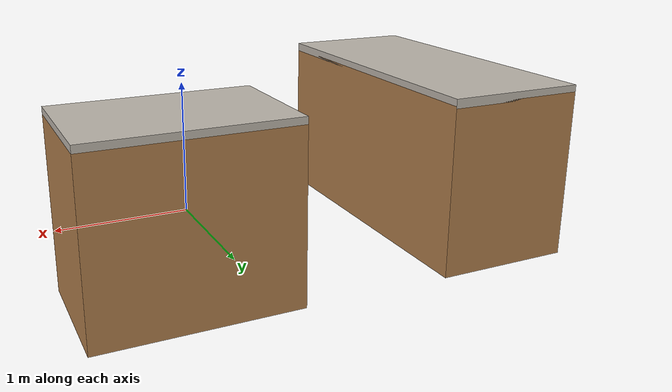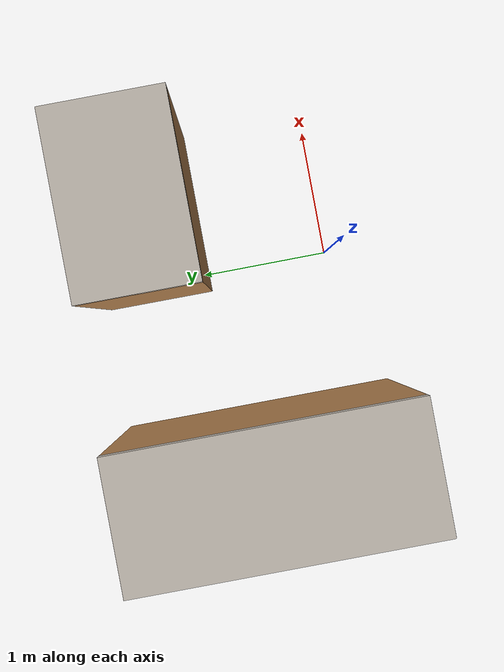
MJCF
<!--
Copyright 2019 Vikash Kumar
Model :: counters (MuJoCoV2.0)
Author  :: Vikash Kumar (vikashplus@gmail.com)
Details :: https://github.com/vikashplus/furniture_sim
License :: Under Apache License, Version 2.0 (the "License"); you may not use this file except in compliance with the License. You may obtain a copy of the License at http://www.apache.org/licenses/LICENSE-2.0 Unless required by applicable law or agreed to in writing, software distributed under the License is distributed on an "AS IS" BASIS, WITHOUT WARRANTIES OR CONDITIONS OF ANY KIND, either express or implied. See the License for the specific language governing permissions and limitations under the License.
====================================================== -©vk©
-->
<mujoco model="counters">
    <compiler angle="radian"/>
    <asset>
        <texture name="T_counter_metal" type="cube" height="1" width="1" file="kitchen_textures/metal0.png" />
        <texture name="T_counter_marble" type="cube" height="1" width="1" file="kitchen_textures/stone2.png" />
        <texture name="T_counter_wood" type="cube" height="2" width="2" file="kitchen_textures/wood1.png"/>

        <material name="counter_metal" rgba="1 1 1 1" texture="T_counter_metal" texrepeat="3 3" reflectance="0" shininess="0" texuniform="false" />
        <material name="counter_marble"  texture="T_counter_marble" texrepeat="1 1" reflectance="0" shininess="0" texuniform="false" />
        <material name="counter_black" rgba=".2 .2 .2 1" reflectance="0" shininess="0"  />
        <material name="counter_blue" texture="T_counter_wood" rgba="1 1 1 1" reflectance="0" shininess="0" texuniform="false"/>
        <material name="counter_collision_blue" rgba="0.3 0.3 1.0 0.5" shininess="0" specular="0" />

    </asset>

    <default>
        <default class="counters">
            <joint damping="2" frictionloss="2" armature=".01" limited="true"/>
            <geom conaffinity="0" contype="0" group="1" material="counter_metal" type="mesh"/>
            <default class="counter_collision">
                <geom conaffinity="1" condim="3" contype="0" group="4" margin="0.001" material="counter_collision_blue"/>
            </default>
        </default>
    </default>

    <worldbody>
        <body name="box_counter" pos="-0.71 1.25 0" childclass="counters">
            <geom material="counter_marble" pos="-0.86 -0.5 1.1325" size="0.460 1.07 0.03" type="box"/>
            <geom material="counter_blue" pos="-0.86 -0.5 0.55825" size="0.460 1.07 0.55825" type="box"/>
        </body>
        <body name="box_counter2" pos="1 2.24 0" childclass="counters">
            <geom material="counter_marble" pos="-0.5 -0.86 1.1325" size="0.64 0.420 0.03" type="box"/>
            <geom material="counter_blue" pos="-0.5 -0.86 0.55825" size="0.64 0.420 0.55825" type="box"/>
        </body>
    </worldbody>

</mujoco>
